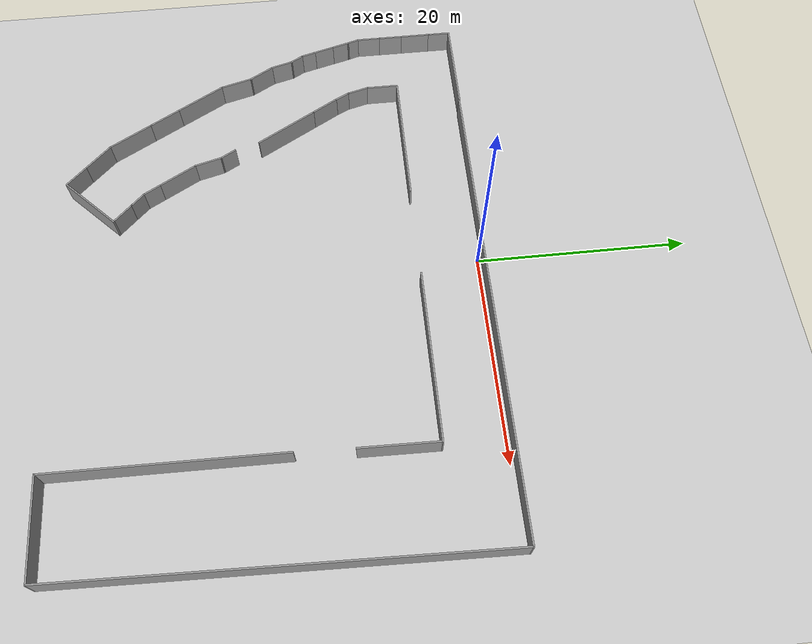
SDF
<sdf version="1.7">
 <world name="default">
  <light name="sun" type="directional">
   <pose>0 0 10 0 -0 0</pose>
   <diffuse>0.8 0.8 0.8 1</diffuse>
   <specular>0.2 0.2 0.2 1</specular>
   <attenuation>
    <range>1000</range>
    <constant>0.9</constant>
    <linear>0.01</linear>
    <quadratic>0.001</quadratic>
   </attenuation>
   <direction>-0.5 0.1 -0.9</direction>
   <spot><inner_angle>0</inner_angle><outer_angle>0</outer_angle><falloff>0</falloff></spot>
  </light>
  <model name="ground_plane">
   <static>1</static>
   <link name="link">
    <collision name="collision">
     <geometry><plane><normal>0 0 1</normal><size>100 100</size></plane></geometry>
     <surface><friction><ode><mu>100</mu><mu2>50</mu2></ode></friction></surface>
    </collision>
    <visual name="visual">
     <cast_shadows>0</cast_shadows>
     <geometry><plane><normal>0 0 1</normal><size>100 100</size></plane></geometry>
     <material>
      <script><uri>file://media/materials/scripts/gazebo.material</uri><name>Gazebo/Grey</name></script>
     </material>
    </visual>
   </link>
  </model>
  <gravity>0 0 -9.8</gravity>
  <magnetic_field>6e-06 2.3e-05 -4.2e-05</magnetic_field>
  <atmosphere type="adiabatic"/>
  <physics type="ode">
   <max_step_size>0.001</max_step_size>
   <real_time_factor>1</real_time_factor>
   <real_time_update_rate>1000</real_time_update_rate>
  </physics>
  <scene><ambient>0.4 0.4 0.4 1</ambient><background>0.7 0.7 0.7 1</background><shadows>1</shadows></scene>
  <spherical_coordinates>
   <surface_model>EARTH_WGS84</surface_model>
   <latitude_deg>0</latitude_deg>
   <longitude_deg>0</longitude_deg>
   <elevation>0</elevation>
   <heading_deg>0</heading_deg>
  </spherical_coordinates>
  <model name="jiaoxue">
   <pose>0.48973 -19.5913 0 0 -0 0</pose>
   <link name="Wall_1">
    <collision name="Wall_1_Collision">
     <geometry><box><size>45 0.15 2.5</size></box></geometry>
     <pose>0 0 1.25 0 -0 0</pose>
    </collision>
    <visual name="Wall_1_Visual">
     <pose>0 0 1.25 0 -0 0</pose>
     <geometry><box><size>45 0.15 2.5</size></box></geometry>
     <material>
      <script><uri>file://media/materials/scripts/gazebo.material</uri><name>Gazebo/Grey</name></script>
      <ambient>1 1 1 1</ambient>
     </material>
     <meta><layer>0</layer></meta>
    </visual>
    <pose>4.54246 20.0229 0 0 -0 0</pose>
   </link>
   <link name="Wall_12">
    <collision name="Wall_12_Collision">
     <geometry><box><size>13 0.15 2.5</size></box></geometry>
     <pose>0 0 1.25 0 -0 0</pose>
    </collision>
    <visual name="Wall_12_Visual">
     <pose>0 0 1.25 0 -0 0</pose>
     <geometry><box><size>13 0.15 2.5</size></box></geometry>
     <material>
      <script><uri>file://media/materials/scripts/gazebo.material</uri><name>Gazebo/Grey</name></script>
      <ambient>1 1 1 1</ambient>
     </material>
     <meta><layer>0</layer></meta>
    </visual>
    <pose>-14.0368 13.9181 0 0 -0 3.14159</pose>
   </link>
   <link name="Wall_13">
    <collision name="Wall_13_Collision">
     <geometry><box><size>3.25 0.15 2.5</size></box></geometry>
     <pose>0 0 1.25 0 -0 0</pose>
    </collision>
    <visual name="Wall_13_Visual">
     <pose>0 0 1.25 0 -0 0</pose>
     <geometry><box><size>3.25 0.15 2.5</size></box></geometry>
     <material>
      <script><uri>file://media/materials/scripts/gazebo.material</uri><name>Gazebo/Grey</name></script>
      <ambient>1 1 1 1</ambient>
     </material>
     <meta><layer>0</layer></meta>
    </visual>
    <pose>-20.4618 12.3681 0 0 -0 -1.5708</pose>
   </link>
   <link name="Wall_2">
    <collision name="Wall_2_Collision">
     <geometry><box><size>40.2603 0.15 2.5</size></box></geometry>
     <pose>0 0 1.25 0 -0 0</pose>
    </collision>
    <visual name="Wall_2_Visual">
     <pose>0 0 1.25 0 -0 0</pose>
     <geometry><box><size>40.2603 0.15 2.5</size></box></geometry>
     <material>
      <script><uri>file://media/materials/scripts/gazebo.material</uri><name>Gazebo/Grey</name></script>
      <ambient>1 1 1 1</ambient>
     </material>
     <meta><layer>0</layer></meta>
    </visual>
    <pose>26.4302 -0.02503 0 0 -0 -1.59759</pose>
   </link>
   <link name="Wall_3">
    <collision name="Wall_3_Collision">
     <geometry><box><size>9 0.15 2.5</size></box></geometry>
     <pose>0 0 1.25 0 -0 0</pose>
    </collision>
    <visual name="Wall_3_Visual">
     <pose>0 0 1.25 0 -0 0</pose>
     <geometry><box><size>9 0.15 2.5</size></box></geometry>
     <material>
      <script><uri>file://media/materials/scripts/gazebo.material</uri><name>Gazebo/Grey</name></script>
      <ambient>1 1 1 1</ambient>
     </material>
     <meta><layer>0</layer></meta>
    </visual>
    <pose>21.468 -20.073 0 0 -0 3.14159</pose>
   </link>
   <link name="Wall_32">
    <collision name="Wall_32_Collision">
     <geometry><box><size>2.5 0.15 2.5</size></box></geometry>
     <pose>0 0 1.25 0 -0 0</pose>
    </collision>
    <visual name="Wall_32_Visual">
     <pose>0 0 1.25 0 -0 0</pose>
     <geometry><box><size>2.5 0.15 2.5</size></box></geometry>
     <material>
      <script><uri>file://media/materials/scripts/gazebo.material</uri><name>Gazebo/Grey</name></script>
      <ambient>1 1 1 1</ambient>
     </material>
     <meta><layer>0</layer></meta>
    </visual>
    <pose>-26.9512 11.5999 0 0 -0 1.5708</pose>
   </link>
   <link name="Wall_33">
    <collision name="Wall_33_Collision">
     <geometry><box><size>2.5 0.15 2.5</size></box></geometry>
     <pose>0 0 1.25 0 -0 0</pose>
    </collision>
    <visual name="Wall_33_Visual">
     <pose>0 0 1.25 0 -0 0</pose>
     <geometry><box><size>2.5 0.15 2.5</size></box></geometry>
     <material>
      <script><uri>file://media/materials/scripts/gazebo.material</uri><name>Gazebo/Grey</name></script>
      <ambient>1 1 1 1</ambient>
     </material>
     <meta><layer>0</layer></meta>
    </visual>
    <pose>-26.9512 13.9499 0 0 -0 1.5708</pose>
   </link>
   <link name="Wall_34">
    <collision name="Wall_34_Collision">
     <geometry><box><size>3 0.15 2.5</size></box></geometry>
     <pose>0 0 1.25 0 -0 0</pose>
    </collision>
    <visual name="Wall_34_Visual">
     <pose>0 0 1.25 0 -0 0</pose>
     <geometry><box><size>3 0.15 2.5</size></box></geometry>
     <material>
      <script><uri>file://media/materials/scripts/gazebo.material</uri><name>Gazebo/Grey</name></script>
      <ambient>1 1 1 1</ambient>
     </material>
     <meta><layer>0</layer></meta>
    </visual>
    <pose>-26.9512 16.5499 0 0 -0 1.5708</pose>
   </link>
   <link name="Wall_35">
    <collision name="Wall_35_Collision">
     <geometry><box><size>2.25 0.15 2.5</size></box></geometry>
     <pose>0 0 1.25 0 -0 0</pose>
    </collision>
    <visual name="Wall_35_Visual">
     <pose>0 0 1.25 0 -0 0</pose>
     <geometry><box><size>2.25 0.15 2.5</size></box></geometry>
     <material>
      <script><uri>file://media/materials/scripts/gazebo.material</uri><name>Gazebo/Grey</name></script>
      <ambient>1 1 1 1</ambient>
     </material>
     <meta><layer>0</layer></meta>
    </visual>
    <pose>-26.9512 19.0249 0 0 -0 1.5708</pose>
   </link>
   <link name="Wall_36">
    <collision name="Wall_36_Collision">
     <geometry><box><size>9 0.15 2.5</size></box></geometry>
     <pose>0 0 1.25 0 -0 0</pose>
    </collision>
    <visual name="Wall_36_Visual">
     <pose>0 0 1.25 0 -0 0</pose>
     <geometry><box><size>9 0.15 2.5</size></box></geometry>
     <material>
      <script><uri>file://media/materials/scripts/gazebo.material</uri><name>Gazebo/Grey</name></script>
      <ambient>1 1 1 1</ambient>
     </material>
     <meta><layer>0</layer></meta>
    </visual>
    <pose>-22.5262 20.0749 0 0 -0 0</pose>
   </link>
   <link name="Wall_4">
    <collision name="Wall_4_Collision">
     <geometry><box><size>21.4971 0.15 2.5</size></box></geometry>
     <pose>0 0 1.25 0 -0 0</pose>
    </collision>
    <visual name="Wall_4_Visual">
     <pose>0 0 1.25 0 -0 0</pose>
     <geometry><box><size>21.4971 0.15 2.5</size></box></geometry>
     <material>
      <script><uri>file://media/materials/scripts/gazebo.material</uri><name>Gazebo/Grey</name></script>
      <ambient>1 1 1 1</ambient>
     </material>
     <meta><layer>0</layer></meta>
    </visual>
    <pose>17.1557 -9.40003 0 0 -0 1.56024</pose>
   </link>
   <link name="Wall_43">
    <collision name="Wall_43_Collision">
     <geometry><box><size>2.17292 0.15 2.5</size></box></geometry>
     <pose>0 0 1.25 0 -0 0</pose>
    </collision>
    <visual name="Wall_43_Visual">
     <pose>0 0 1.25 0 -0 0</pose>
     <geometry><box><size>2.17292 0.15 2.5</size></box></geometry>
     <material>
      <script><uri>file://media/materials/scripts/gazebo.material</uri><name>Gazebo/Grey</name></script>
      <ambient>1 1 1 1</ambient>
     </material>
     <meta><layer>0</layer></meta>
    </visual>
    <pose>-20.2043 9.83998 0 0 -0 1.82822</pose>
   </link>
   <link name="Wall_45">
    <collision name="Wall_45_Collision">
     <geometry><box><size>1.573 0.15 2.5</size></box></geometry>
     <pose>0 0 1.25 0 -0 0</pose>
    </collision>
    <visual name="Wall_45_Visual">
     <pose>0 0 1.25 0 -0 0</pose>
     <geometry><box><size>1.573 0.15 2.5</size></box></geometry>
     <material>
      <script><uri>file://media/materials/scripts/gazebo.material</uri><name>Gazebo/Grey</name></script>
      <ambient>1 1 1 1</ambient>
     </material>
     <meta><layer>0</layer></meta>
    </visual>
    <pose>-19.6286 8.22546 0 0 -0 2.03444</pose>
   </link>
   <link name="Wall_47">
    <collision name="Wall_47_Collision">
     <geometry><box><size>1.28265 0.15 2.5</size></box></geometry>
     <pose>0 0 1.25 0 -0 0</pose>
    </collision>
    <visual name="Wall_47_Visual">
     <pose>0 0 1.25 0 -0 0</pose>
     <geometry><box><size>1.28265 0.15 2.5</size></box></geometry>
     <material>
      <script><uri>file://media/materials/scripts/gazebo.material</uri><name>Gazebo/Grey</name></script>
      <ambient>1 1 1 1</ambient>
     </material>
     <meta><layer>0</layer></meta>
    </visual>
    <pose>-26.79 9.88204 0 0 -0 1.8594</pose>
   </link>
   <link name="Wall_49">
    <collision name="Wall_49_Collision">
     <geometry><box><size>1.75 0.15 2.5</size></box></geometry>
     <pose>0 0 1.25 0 -0 0</pose>
    </collision>
    <visual name="Wall_49_Visual">
     <pose>0 0 1.25 0 -0 0</pose>
     <geometry><box><size>1.75 0.15 2.5</size></box></geometry>
     <material>
      <script><uri>file://media/materials/scripts/gazebo.material</uri><name>Gazebo/Grey</name></script>
      <ambient>1 1 1 1</ambient>
     </material>
     <meta><layer>0</layer></meta>
    </visual>
    <pose>-26.4218 8.5664 0 0 -0 -1.309</pose>
   </link>
   <link name="Wall_50">
    <collision name="Wall_50_Collision">
     <geometry><box><size>2.25 0.15 2.5</size></box></geometry>
     <pose>0 0 1.25 0 -0 0</pose>
    </collision>
    <visual name="Wall_50_Visual">
     <pose>0 0 1.25 0 -0 0</pose>
     <geometry><box><size>2.25 0.15 2.5</size></box></geometry>
     <material>
      <script><uri>file://media/materials/scripts/gazebo.material</uri><name>Gazebo/Grey</name></script>
      <ambient>1 1 1 1</ambient>
     </material>
     <meta><layer>0</layer></meta>
    </visual>
    <pose>-25.943 6.77944 0 0 -0 -1.309</pose>
   </link>
   <link name="Wall_51">
    <collision name="Wall_51_Collision">
     <geometry><box><size>1.5 0.15 2.5</size></box></geometry>
     <pose>0 0 1.25 0 -0 0</pose>
    </collision>
    <visual name="Wall_51_Visual">
     <pose>0 0 1.25 0 -0 0</pose>
     <geometry><box><size>1.5 0.15 2.5</size></box></geometry>
     <material>
      <script><uri>file://media/materials/scripts/gazebo.material</uri><name>Gazebo/Grey</name></script>
      <ambient>1 1 1 1</ambient>
     </material>
     <meta><layer>0</layer></meta>
    </visual>
    <pose>-25.4965 5.11322 0 0 -0 -1.309</pose>
   </link>
   <link name="Wall_52">
    <collision name="Wall_52_Collision">
     <geometry><box><size>1.5 0.15 2.5</size></box></geometry>
     <pose>0 0 1.25 0 -0 0</pose>
    </collision>
    <visual name="Wall_52_Visual">
     <pose>0 0 1.25 0 -0 0</pose>
     <geometry><box><size>1.5 0.15 2.5</size></box></geometry>
     <material>
      <script><uri>file://media/materials/scripts/gazebo.material</uri><name>Gazebo/Grey</name></script>
      <ambient>1 1 1 1</ambient>
     </material>
     <meta><layer>0</layer></meta>
    </visual>
    <pose>-24.9843 3.87665 0 0 -0 -1.0472</pose>
   </link>
   <link name="Wall_53">
    <collision name="Wall_53_Collision">
     <geometry><box><size>2.25 0.15 2.5</size></box></geometry>
     <pose>0 0 1.25 0 -0 0</pose>
    </collision>
    <visual name="Wall_53_Visual">
     <pose>0 0 1.25 0 -0 0</pose>
     <geometry><box><size>2.25 0.15 2.5</size></box></geometry>
     <material>
      <script><uri>file://media/materials/scripts/gazebo.material</uri><name>Gazebo/Grey</name></script>
      <ambient>1 1 1 1</ambient>
     </material>
     <meta><layer>0</layer></meta>
    </visual>
    <pose>-24.375 2.27786 0 0 -0 -1.309</pose>
   </link>
   <link name="Wall_54">
    <collision name="Wall_54_Collision">
     <geometry><box><size>2.75 0.15 2.5</size></box></geometry>
     <pose>0 0 1.25 0 -0 0</pose>
    </collision>
    <visual name="Wall_54_Visual">
     <pose>0 0 1.25 0 -0 0</pose>
     <geometry><box><size>2.75 0.15 2.5</size></box></geometry>
     <material>
      <script><uri>file://media/materials/scripts/gazebo.material</uri><name>Gazebo/Grey</name></script>
      <ambient>1 1 1 1</ambient>
     </material>
     <meta><layer>0</layer></meta>
    </visual>
    <pose>-23.4533 0.137804 0 0 -0 -1.0472</pose>
   </link>
   <link name="Wall_55">
    <collision name="Wall_55_Collision">
     <geometry><box><size>3.25 0.15 2.5</size></box></geometry>
     <pose>0 0 1.25 0 -0 0</pose>
    </collision>
    <visual name="Wall_55_Visual">
     <pose>0 0 1.25 0 -0 0</pose>
     <geometry><box><size>3.25 0.15 2.5</size></box></geometry>
     <material>
      <script><uri>file://media/materials/scripts/gazebo.material</uri><name>Gazebo/Grey</name></script>
      <ambient>1 1 1 1</ambient>
     </material>
     <meta><layer>0</layer></meta>
    </visual>
    <pose>-22.4021 -2.48522 0 0 -0 -1.309</pose>
   </link>
   <link name="Wall_56">
    <collision name="Wall_56_Collision">
     <geometry><box><size>5.25 0.15 2.5</size></box></geometry>
     <pose>0 0 1.25 0 -0 0</pose>
    </collision>
    <visual name="Wall_56_Visual">
     <pose>0 0 1.25 0 -0 0</pose>
     <geometry><box><size>5.25 0.15 2.5</size></box></geometry>
     <material>
      <script><uri>file://media/materials/scripts/gazebo.material</uri><name>Gazebo/Grey</name></script>
      <ambient>1 1 1 1</ambient>
     </material>
     <meta><layer>0</layer></meta>
    </visual>
    <pose>-20.7259 -6.19076 0 0 -0 -1.0472</pose>
   </link>
   <link name="Wall_57">
    <collision name="Wall_57_Collision">
     <geometry><box><size>3.25 0.15 2.5</size></box></geometry>
     <pose>0 0 1.25 0 -0 0</pose>
    </collision>
    <visual name="Wall_57_Visual">
     <pose>0 0 1.25 0 -0 0</pose>
     <geometry><box><size>3.25 0.15 2.5</size></box></geometry>
     <material>
      <script><uri>file://media/materials/scripts/gazebo.material</uri><name>Gazebo/Grey</name></script>
      <ambient>1 1 1 1</ambient>
     </material>
     <meta><layer>0</layer></meta>
    </visual>
    <pose>-18.6759 -9.74147 0 0 -0 -1.0472</pose>
   </link>
   <link name="Wall_58">
    <collision name="Wall_58_Collision">
     <geometry><box><size>4.75 0.15 2.5</size></box></geometry>
     <pose>0 0 1.25 0 -0 0</pose>
    </collision>
    <visual name="Wall_58_Visual">
     <pose>0 0 1.25 0 -0 0</pose>
     <geometry><box><size>4.75 0.15 2.5</size></box></geometry>
     <material>
      <script><uri>file://media/materials/scripts/gazebo.material</uri><name>Gazebo/Grey</name></script>
      <ambient>1 1 1 1</ambient>
     </material>
     <meta><layer>0</layer></meta>
    </visual>
    <pose>-16.7509 -13.0757 0 0 -0 -1.0472</pose>
   </link>
   <link name="Wall_59">
    <collision name="Wall_59_Collision">
     <geometry><box><size>3.25 0.15 2.5</size></box></geometry>
     <pose>0 0 1.25 0 -0 0</pose>
    </collision>
    <visual name="Wall_59_Visual">
     <pose>0 0 1.25 0 -0 0</pose>
     <geometry><box><size>3.25 0.15 2.5</size></box></geometry>
     <material>
      <script><uri>file://media/materials/scripts/gazebo.material</uri><name>Gazebo/Grey</name></script>
      <ambient>1 1 1 1</ambient>
     </material>
     <meta><layer>0</layer></meta>
    </visual>
    <pose>-14.5049 -16.1635 0 0 -0 -0.785398</pose>
   </link>
   <link name="Wall_60">
    <collision name="Wall_60_Collision">
     <geometry><box><size>2.75 0.15 2.5</size></box></geometry>
     <pose>0 0 1.25 0 -0 0</pose>
    </collision>
    <visual name="Wall_60_Visual">
     <pose>0 0 1.25 0 -0 0</pose>
     <geometry><box><size>2.75 0.15 2.5</size></box></geometry>
     <material>
      <script><uri>file://media/materials/scripts/gazebo.material</uri><name>Gazebo/Grey</name></script>
      <ambient>1 1 1 1</ambient>
     </material>
     <meta><layer>0</layer></meta>
    </visual>
    <pose>-12.4897 -18.1788 0 0 -0 -0.785398</pose>
   </link>
   <link name="Wall_61">
    <collision name="Wall_61_Collision">
     <geometry><box><size>6.75 0.15 2.5</size></box></geometry>
     <pose>0 0 1.25 0 -0 0</pose>
    </collision>
    <visual name="Wall_61_Visual">
     <pose>0 0 1.25 0 -0 0</pose>
     <geometry><box><size>6.75 0.15 2.5</size></box></geometry>
     <material>
      <script><uri>file://media/materials/scripts/gazebo.material</uri><name>Gazebo/Grey</name></script>
      <ambient>1 1 1 1</ambient>
     </material>
     <meta><layer>0</layer></meta>
    </visual>
    <pose>-9.23696 -16.7646 0 0 -0 0.785398</pose>
   </link>
   <link name="Wall_62">
    <collision name="Wall_62_Collision">
     <geometry><box><size>2.5 0.15 2.5</size></box></geometry>
     <pose>0 0 1.25 0 -0 0</pose>
    </collision>
    <visual name="Wall_62_Visual">
     <pose>0 0 1.25 0 -0 0</pose>
     <geometry><box><size>2.5 0.15 2.5</size></box></geometry>
     <material>
      <script><uri>file://media/materials/scripts/gazebo.material</uri><name>Gazebo/Grey</name></script>
      <ambient>1 1 1 1</ambient>
     </material>
     <meta><layer>0</layer></meta>
    </visual>
    <pose>-7.73436 -13.6003 0 0 -0 2.35619</pose>
   </link>
   <link name="Wall_63">
    <collision name="Wall_63_Collision">
     <geometry><box><size>1.75 0.15 2.5</size></box></geometry>
     <pose>0 0 1.25 0 -0 0</pose>
    </collision>
    <visual name="Wall_63_Visual">
     <pose>0 0 1.25 0 -0 0</pose>
     <geometry><box><size>1.75 0.15 2.5</size></box></geometry>
     <material>
      <script><uri>file://media/materials/scripts/gazebo.material</uri><name>Gazebo/Grey</name></script>
      <ambient>1 1 1 1</ambient>
     </material>
     <meta><layer>0</layer></meta>
    </visual>
    <pose>-9.1309 -12.2037 0 0 -0 2.35619</pose>
   </link>
   <link name="Wall_64">
    <collision name="Wall_64_Collision">
     <geometry><box><size>2 0.15 2.5</size></box></geometry>
     <pose>0 0 1.25 0 -0 0</pose>
    </collision>
    <visual name="Wall_64_Visual">
     <pose>0 0 1.25 0 -0 0</pose>
     <geometry><box><size>2 0.15 2.5</size></box></geometry>
     <material>
      <script><uri>file://media/materials/scripts/gazebo.material</uri><name>Gazebo/Grey</name></script>
      <ambient>1 1 1 1</ambient>
     </material>
     <meta><layer>0</layer></meta>
    </visual>
    <pose>-10.1591 -10.837 0 0 -0 2.0944</pose>
   </link>
   <link name="Wall_65">
    <collision name="Wall_65_Collision">
     <geometry><box><size>4 0.15 2.5</size></box></geometry>
     <pose>0 0 1.25 0 -0 0</pose>
    </collision>
    <visual name="Wall_65_Visual">
     <pose>0 0 1.25 0 -0 0</pose>
     <geometry><box><size>4 0.15 2.5</size></box></geometry>
     <material>
      <script><uri>file://media/materials/scripts/gazebo.material</uri><name>Gazebo/Grey</name></script>
      <ambient>1 1 1 1</ambient>
     </material>
     <meta><layer>0</layer></meta>
    </visual>
    <pose>-11.5841 -8.36881 0 0 -0 2.0944</pose>
   </link>
   <link name="Wall_66">
    <collision name="Wall_66_Collision">
     <geometry><box><size>2.75 0.15 2.5</size></box></geometry>
     <pose>0 0 1.25 0 -0 0</pose>
    </collision>
    <visual name="Wall_66_Visual">
     <pose>0 0 1.25 0 -0 0</pose>
     <geometry><box><size>2.75 0.15 2.5</size></box></geometry>
     <material>
      <script><uri>file://media/materials/scripts/gazebo.material</uri><name>Gazebo/Grey</name></script>
      <ambient>1 1 1 1</ambient>
     </material>
     <meta><layer>0</layer></meta>
    </visual>
    <pose>-12.883 -5.44601 0 0 -0 1.8326</pose>
   </link>
   <link name="Wall_67">
    <collision name="Wall_67_Collision">
     <geometry><box><size>1.75 0.15 2.5</size></box></geometry>
     <pose>0 0 1.25 0 -0 0</pose>
    </collision>
    <visual name="Wall_67_Visual">
     <pose>0 0 1.25 0 -0 0</pose>
     <geometry><box><size>1.75 0.15 2.5</size></box></geometry>
     <material>
      <script><uri>file://media/materials/scripts/gazebo.material</uri><name>Gazebo/Grey</name></script>
      <ambient>1 1 1 1</ambient>
     </material>
     <meta><layer>0</layer></meta>
    </visual>
    <pose>-13.6195 -3.49749 0 0 -0 2.0944</pose>
   </link>
   <link name="Wall_69">
    <collision name="Wall_69_Collision">
     <geometry><box><size>3 0.15 2.5</size></box></geometry>
     <pose>0 0 1.25 0 -0 0</pose>
    </collision>
    <visual name="Wall_69_Visual">
     <pose>0 0 1.25 0 -0 0</pose>
     <geometry><box><size>3 0.15 2.5</size></box></geometry>
     <material>
      <script><uri>file://media/materials/scripts/gazebo.material</uri><name>Gazebo/Grey</name></script>
      <ambient>1 1 1 1</ambient>
     </material>
     <meta><layer>0</layer></meta>
    </visual>
    <pose>-18.5979 6.35499 0 0 -0 -1.0472</pose>
   </link>
   <link name="Wall_7">
    <collision name="Wall_7_Collision">
     <geometry><box><size>7.40362 0.15 2.5</size></box></geometry>
     <pose>0 0 1.25 0 -0 0</pose>
    </collision>
    <visual name="Wall_7_Visual">
     <pose>0 0 1.25 0 -0 0</pose>
     <geometry><box><size>7.40362 0.15 2.5</size></box></geometry>
     <material>
      <script><uri>file://media/materials/scripts/gazebo.material</uri><name>Gazebo/Grey</name></script>
      <ambient>1 1 1 1</ambient>
     </material>
     <meta><layer>0</layer></meta>
    </visual>
    <pose>17.5293 10.2855 0 0 -0 1.55223</pose>
   </link>
   <link name="Wall_70">
    <collision name="Wall_70_Collision">
     <geometry><box><size>6.5 0.15 2.5</size></box></geometry>
     <pose>0 0 1.25 0 -0 0</pose>
    </collision>
    <visual name="Wall_70_Visual">
     <pose>0 0 1.25 0 -0 0</pose>
     <geometry><box><size>6.5 0.15 2.5</size></box></geometry>
     <material>
      <script><uri>file://media/materials/scripts/gazebo.material</uri><name>Gazebo/Grey</name></script>
      <ambient>1 1 1 1</ambient>
     </material>
     <meta><layer>0</layer></meta>
    </visual>
    <pose>-16.2979 2.37127 0 0 -0 -1.0472</pose>
   </link>
   <link name="Wall_8">
    <collision name="Wall_8_Collision">
     <geometry><box><size>16.25 0.15 2.5</size></box></geometry>
     <pose>0 0 1.25 0 -0 0</pose>
    </collision>
    <visual name="Wall_8_Visual">
     <pose>0 0 1.25 0 -0 0</pose>
     <geometry><box><size>16.25 0.15 2.5</size></box></geometry>
     <material>
      <script><uri>file://media/materials/scripts/gazebo.material</uri><name>Gazebo/Grey</name></script>
      <ambient>1 1 1 1</ambient>
     </material>
     <meta><layer>0</layer></meta>
    </visual>
    <pose>9.54663 13.9117 0 0 -0 3.14159</pose>
   </link>
   <static>1</static>
  </model>
 </world>
</sdf>
